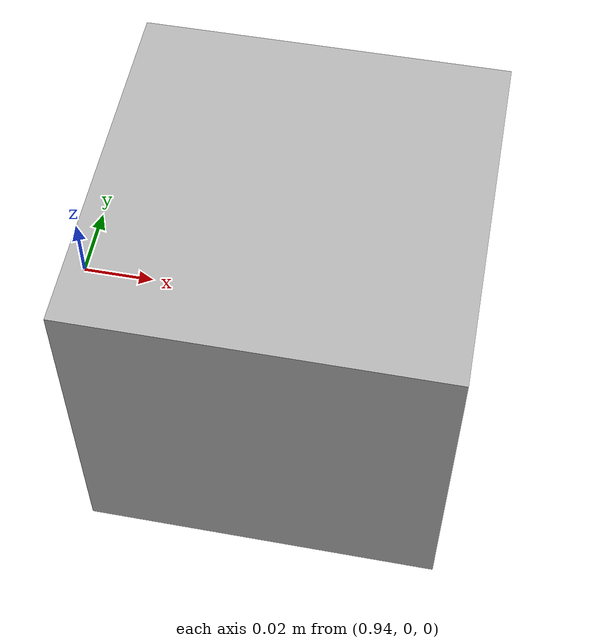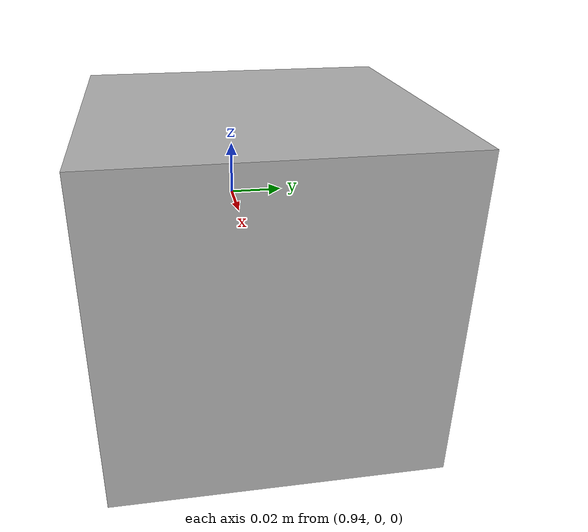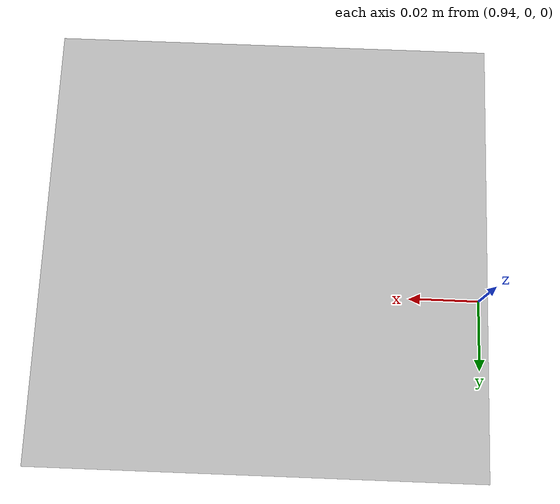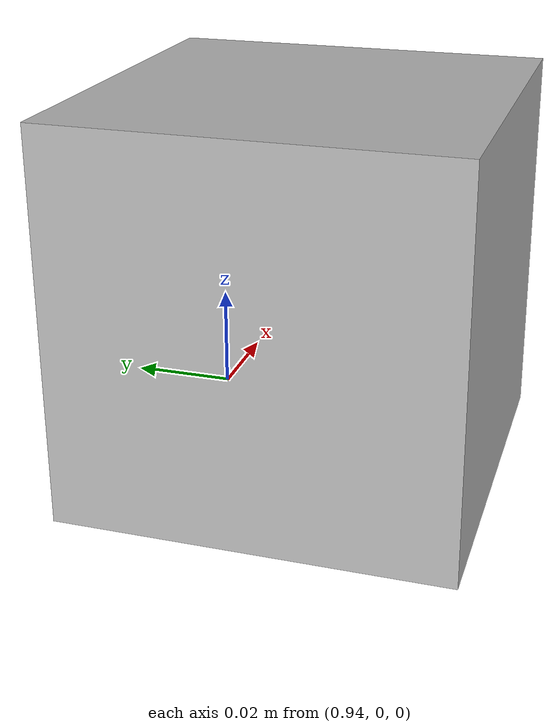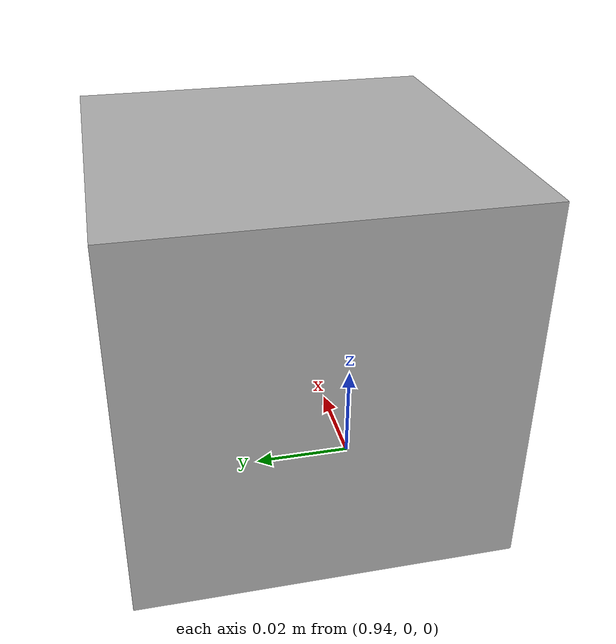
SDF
<?xml version="1.0" ?>
<sdf version="1.6">
  <world name="propshop">
    <physics name="1ms" type="ode">
      <max_step_size>0.001</max_step_size>
      <real_time_factor>1.0</real_time_factor>
    </physics>
    <plugin
      filename="libignition-gazebo-physics-system.so"
      name="ignition::gazebo::systems::Physics">
    </plugin>
    <plugin
      filename="libignition-gazebo-user-commands-system.so"
      name="ignition::gazebo::systems::UserCommands">
    </plugin>
    <plugin
      filename="libignition-gazebo-sensors-system.so"
      name="ignition::gazebo::systems::Sensors">
      <render_engine>ogre2</render_engine>
    </plugin>
    <plugin
      filename="libignition-gazebo-scene-broadcaster-system.so"
      name="ignition::gazebo::systems::SceneBroadcaster">
    </plugin>
    <plugin
      filename="libignition-gazebo-contact-system.so"
      name="ignition::gazebo::systems::Contact">
    </plugin>
    <!-- Helps in dealing with non static objects -->
    <gravity>0 0 0</gravity>

    <gui fullscreen="0">

      <!-- 3D scene -->
      <plugin filename="GzScene3D" name="3D View">
        <ignition-gui>
          <title>3D View</title>
          <property type="bool" key="showTitleBar">false</property>
          <property type="string" key="state">docked</property>
        </ignition-gui>

        <engine>ogre2</engine>
        <scene>scene</scene>
        <ambient_light>0.4 0.4 0.4</ambient_light>
        <background_color>0.8 0.8 0.8</background_color>
        <camera_pose>-6 0 6 0 0.5 0</camera_pose>
      </plugin>

      <!-- World control -->
      <plugin filename="WorldControl" name="World control">
        <ignition-gui>
          <title>World control</title>
          <property type="bool" key="showTitleBar">false</property>
          <property type="bool" key="resizable">false</property>
          <property type="double" key="height">72</property>
          <property type="double" key="width">121</property>
          <property type="double" key="z">1</property>

          <property type="string" key="state">floating</property>
          <anchors target="3D View">
            <line own="left" target="left"/>
            <line own="bottom" target="bottom"/>
          </anchors>
        </ignition-gui>

        <play_pause>true</play_pause>
        <step>true</step>
        <start_paused>true</start_paused>
        <service>/world/propshop/control</service>
        <stats_topic>/world/propshop/stats</stats_topic>

      </plugin>

      <!-- World statistics -->
      <plugin filename="WorldStats" name="World stats">
        <ignition-gui>
          <title>World stats</title>
          <property type="bool" key="showTitleBar">false</property>
          <property type="bool" key="resizable">false</property>
          <property type="double" key="height">110</property>
          <property type="double" key="width">290</property>
          <property type="double" key="z">1</property>

          <property type="string" key="state">floating</property>
          <anchors target="3D View">
            <line own="right" target="right"/>
            <line own="bottom" target="bottom"/>
          </anchors>
        </ignition-gui>

        <sim_time>true</sim_time>
        <real_time>true</real_time>
        <real_time_factor>true</real_time_factor>
        <iterations>true</iterations>
        <topic>/world/propshop/stats</topic>

      </plugin>

      <!-- Entity tree -->
      <plugin filename="EntityTree" name="Entity tree">
      </plugin>

      <plugin filename="ImageDisplay" name="Image Display">
        <ignition-gui>
          <property key="state" type="string">docked</property>
        </ignition-gui>
      </plugin>

    </gui>

    <light type="directional" name="sun">
      <cast_shadows>true</cast_shadows>
      <pose>0 0 10 0 0 0</pose>
      <diffuse>1 1 1 1</diffuse>
      <specular>0.2 0.2 0.2 1</specular>
      <attenuation>
        <range>1000</range>
        <constant>0.9</constant>
        <linear>0.01</linear>
        <quadratic>0.001</quadratic>
      </attenuation>
      <direction>-0.5 0.1 -0.9</direction>
    </light>

    <model name="camera">
      <static>true</static>
      <pose>1.0 0.0 0.0 0.0 0.0 3.14</pose>
      <link name="link">
        <pose>0 0 0 0 0 0</pose>
        <inertial>
          <mass>0.1</mass>
          <inertia>
            <ixx>0.000166667</ixx>
            <iyy>0.000166667</iyy>
            <izz>0.000166667</izz>
          </inertia>
        </inertial>
        <collision name="collision">
          <geometry>
            <box>
              <size>0.1 0.1 0.1</size>
            </box>
          </geometry>
        </collision>
        <visual name="visual">
          <geometry>
            <box>
              <size>0.1 0.1 0.1</size>
            </box>
          </geometry>
        </visual>
        <sensor name="camera" type="camera">
          <camera>
            <horizontal_fov>1.047</horizontal_fov>
            <image>
              <width>960</width>
              <height>540</height>
            </image>
            <clip>
              <near>0.1</near>
              <far>100</far>
            </clip>
            <save enabled="1">
              <path>thumbnails</path>
            </save>
          </camera>
          <always_on>1</always_on>
          <update_rate>3</update_rate>
          <visualize>true</visualize>
          <topic>camera</topic>
          <plugin
            filename="libignition-gazebo-model_propshop-system.so"
            name="ignition::gazebo::systems::ModelPropShop">
            <model_uri>https://fuel.ignitionrobotics.org/1.0/caguero/models/Beer</model_uri>
          </plugin>
        </sensor>
      </link>
    </model>
  </world>
</sdf>
